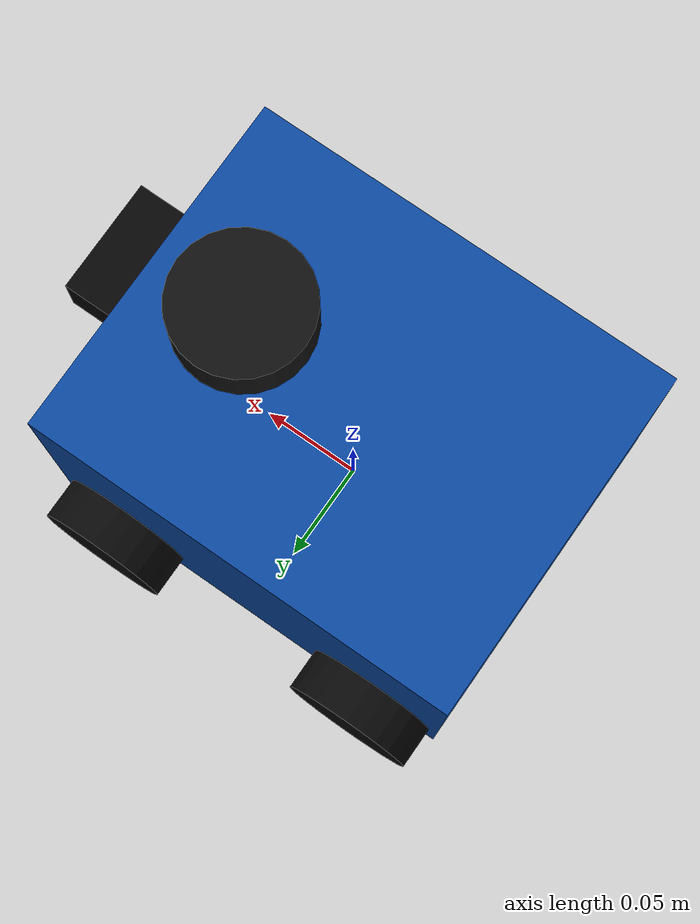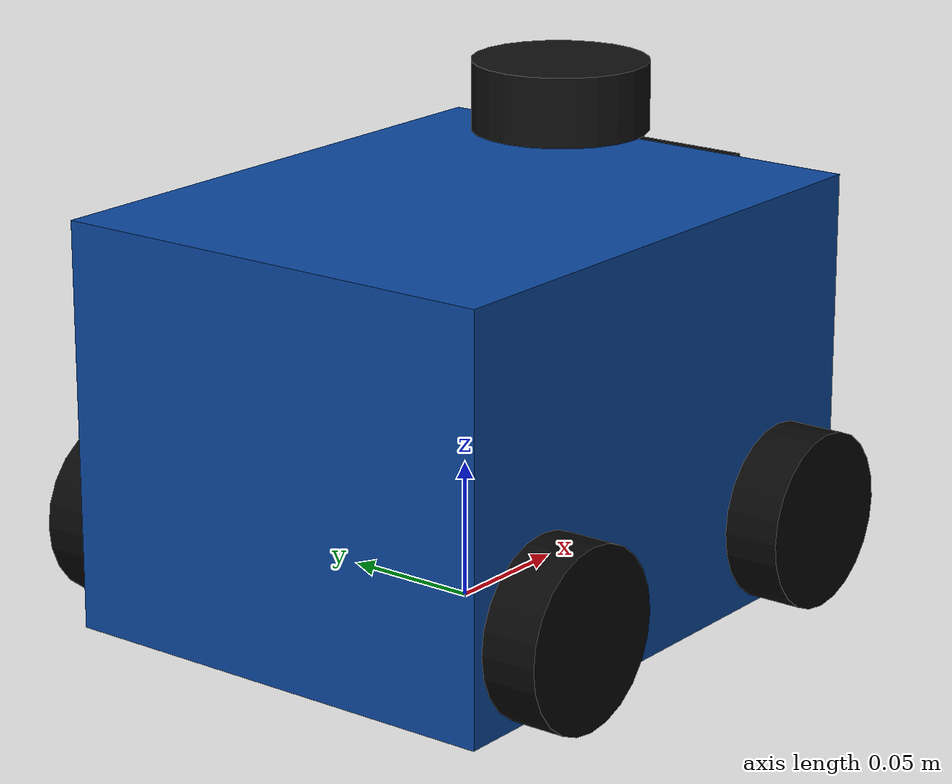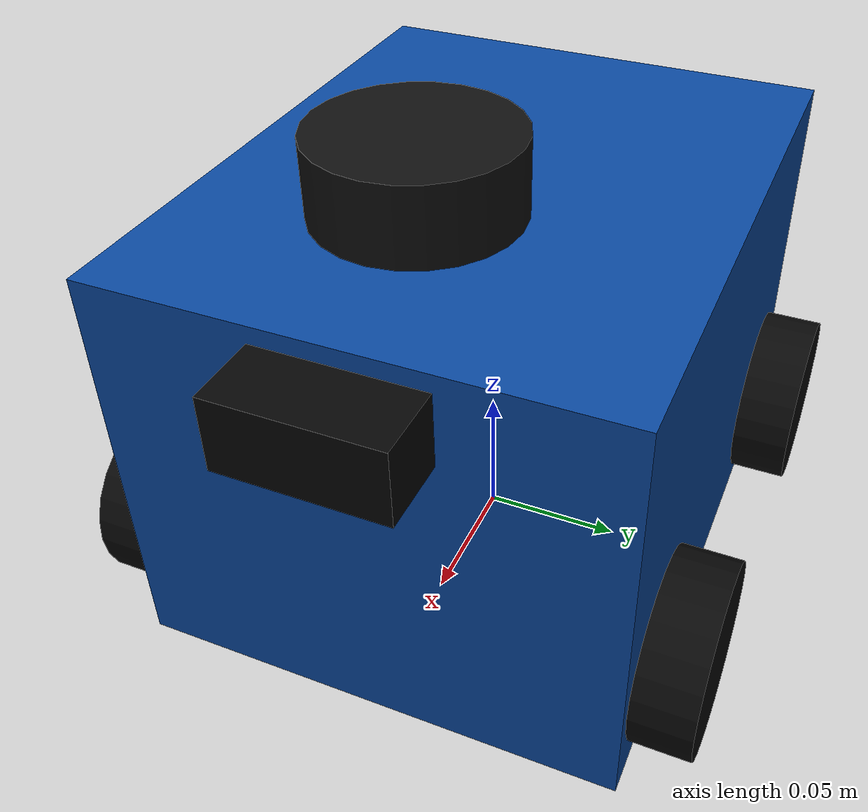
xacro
<?xml version="1.0"?>
<robot xmlns:xacro="http://www.ros.org/wiki/xacro" name="mentorpi_m1">
  <xacro:arg name="robot_name" default="robot_1"/>
  <xacro:arg name="frame_prefix" default="robot_1/"/>
  <xacro:arg name="fork_enabled" default="false"/>
  <xacro:property name="robot_name" value="$(arg robot_name)"/>
  <xacro:property name="frame_prefix" value="$(arg frame_prefix)"/>
  <xacro:property name="fork_enabled" value="$(arg fork_enabled)"/>
  <xacro:property name="chassis_length" value="0.212"/>
  <xacro:property name="chassis_width" value="0.171"/>
  <xacro:property name="chassis_height" value="0.147"/>

  <link name="base_footprint"/>
  <joint name="base_joint" type="fixed">
    <parent link="base_footprint"/><child link="base_link"/>
    <origin xyz="0 0 0.0735"/>
  </joint>
  <link name="base_link">
    <inertial><mass value="2.4"/><origin xyz="0 0 0"/>
      <inertia ixx="0.010" ixy="0" ixz="0" iyy="0.012" iyz="0" izz="0.018"/></inertial>
    <collision><geometry><box size="${chassis_length} ${chassis_width} ${chassis_height}"/></geometry></collision>
    <visual><geometry><box size="${chassis_length} ${chassis_width} ${chassis_height}"/></geometry>
      <material name="mentorpi_blue"><color rgba="0.04 0.28 0.62 1"/></material></visual>
  </link>

  <xacro:macro name="wheel" params="name x y">
    <link name="${name}_wheel">
      <visual><origin rpy="1.5708 0 0"/><geometry><cylinder radius="0.032" length="0.024"/></geometry>
        <material name="wheel_black"><color rgba="0.03 0.03 0.03 1"/></material></visual>
    </link>
    <joint name="${name}_wheel_joint" type="fixed"><parent link="base_link"/><child link="${name}_wheel"/>
      <origin xyz="${x} ${y} -0.042"/></joint>
  </xacro:macro>
  <xacro:wheel name="front_left" x="0.070" y="0.094"/>
  <xacro:wheel name="front_right" x="0.070" y="-0.094"/>
  <xacro:wheel name="rear_left" x="-0.070" y="0.094"/>
  <xacro:wheel name="rear_right" x="-0.070" y="-0.094"/>

  <link name="base_laser"><visual><geometry><cylinder radius="0.032" length="0.025"/></geometry>
    <material name="laser_black"><color rgba="0.06 0.06 0.06 1"/></material></visual></link>
  <joint name="laser_joint" type="fixed"><parent link="base_link"/><child link="base_laser"/>
    <origin xyz="0.055 0 0.100"/></joint>

  <link name="depth_camera_link"><visual><geometry><box size="0.045 0.055 0.025"/></geometry>
    <material name="camera_black"><color rgba="0.02 0.02 0.02 1"/></material></visual></link>
  <joint name="depth_camera_joint" type="fixed"><parent link="base_link"/><child link="depth_camera_link"/>
    <origin xyz="0.108 0 0.055"/></joint>
  <link name="imu_link"/>
  <joint name="imu_joint" type="fixed"><parent link="base_link"/><child link="imu_link"/></joint>

</robot>
